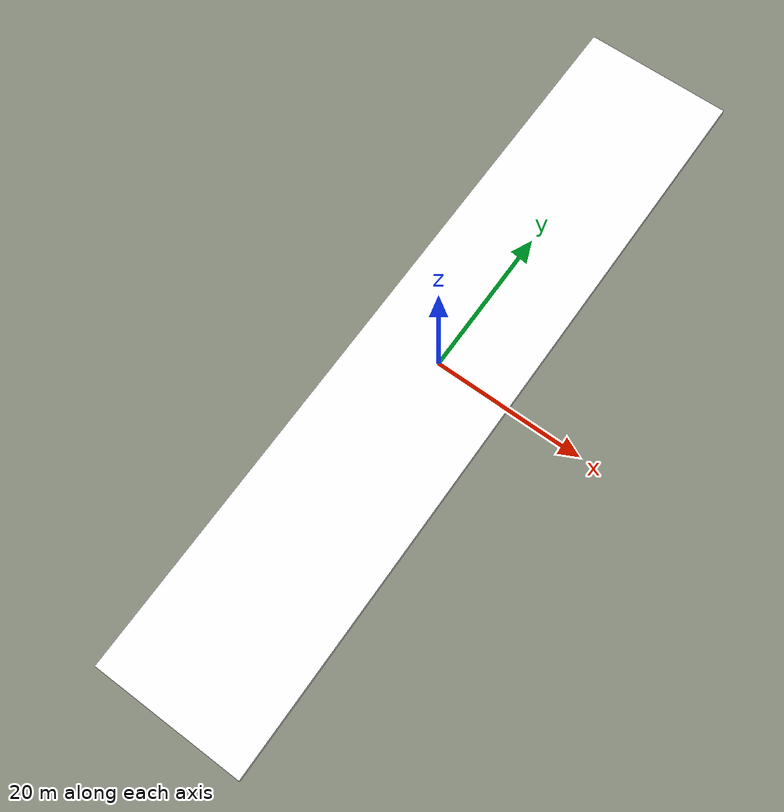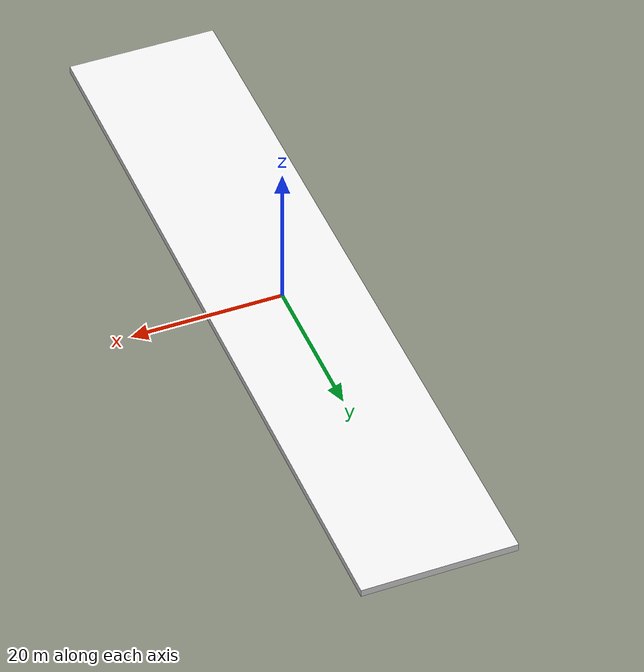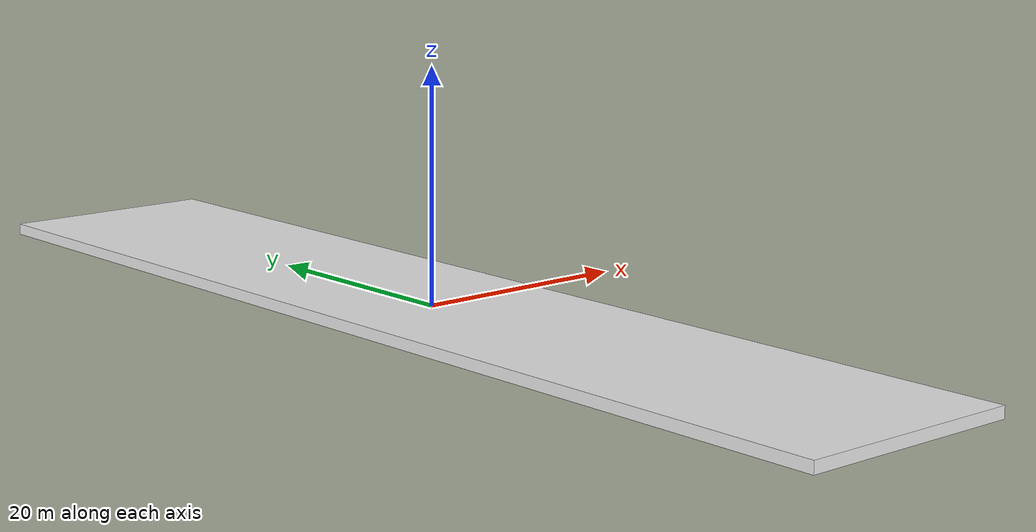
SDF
<?xml version="1.0" ?>
<sdf version="1.4">
  <model name="road">
    <link name="roadl">
      <pose>0 0 0 0 0 0</pose>
      <velocity_decay>
        <linear>0.001</linear>
        <angular>0.001</angular>
      </velocity_decay>
      <collision name="roadc">
        <geometry>
          <box>
            <size>20 100 1</size>
          </box>
        </geometry>
      </collision>
      <visual name="roadv">
        <geometry>
          <box>
            <size>20 100 1</size>
          </box>
        </geometry>
        <material>
          <script>
            <uri>file://media/materials/scripts/gazebo.material</uri>
            <name>Gazebo/White</name>
          </script>
        </material>
      </visual>
    </link>
  </model>
</sdf>
